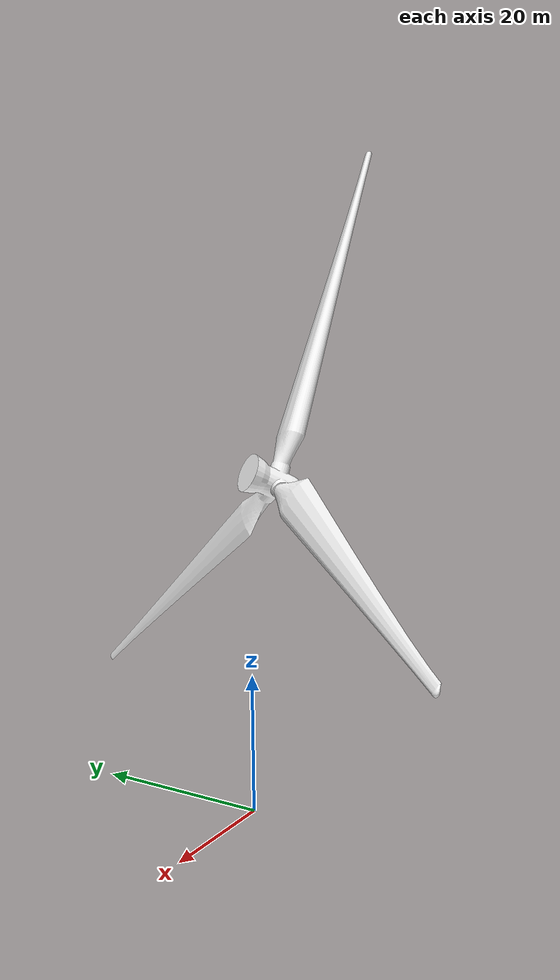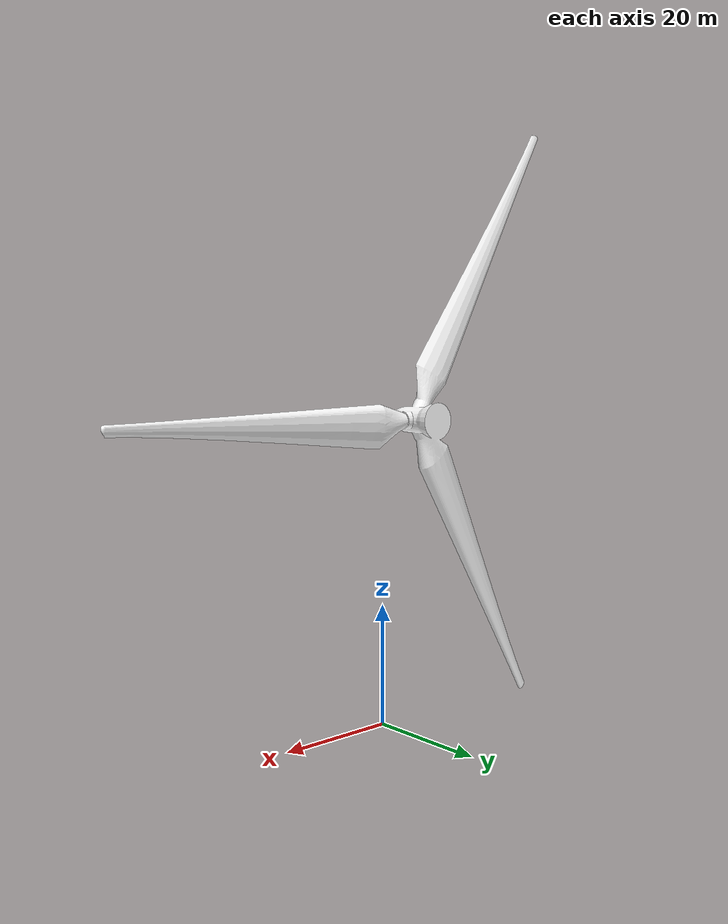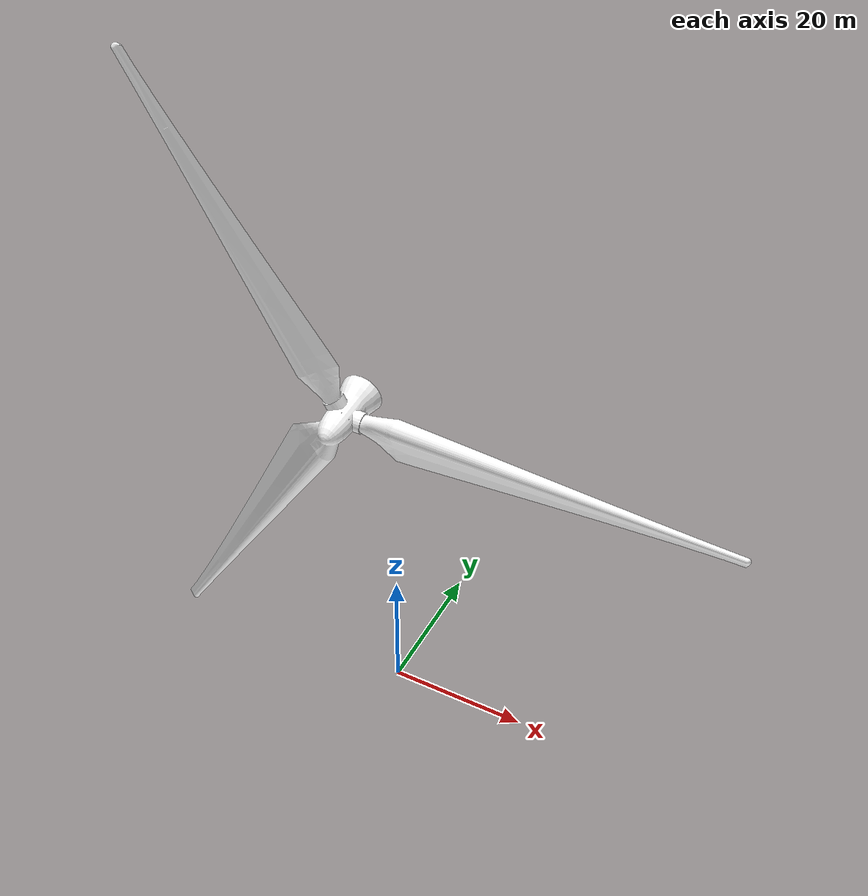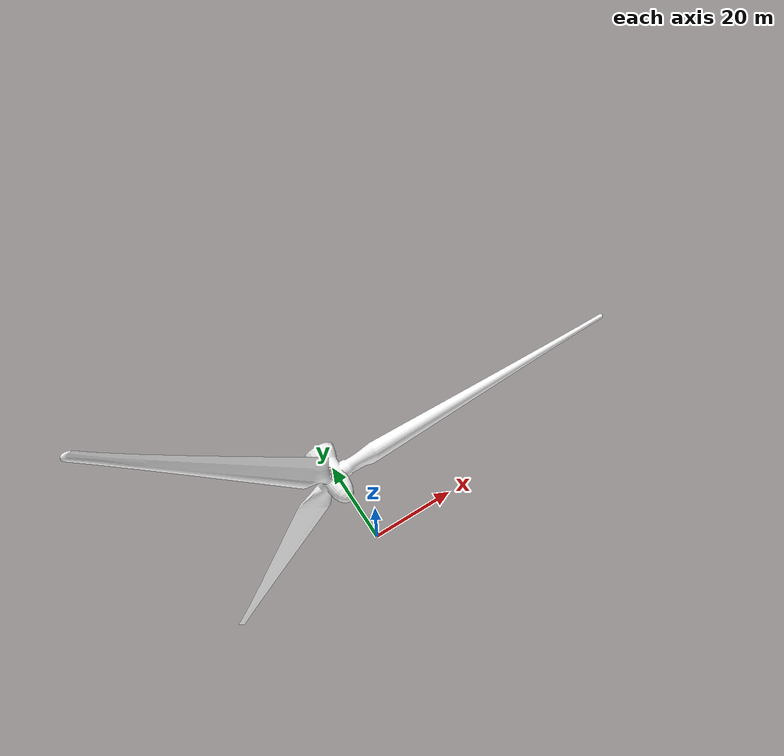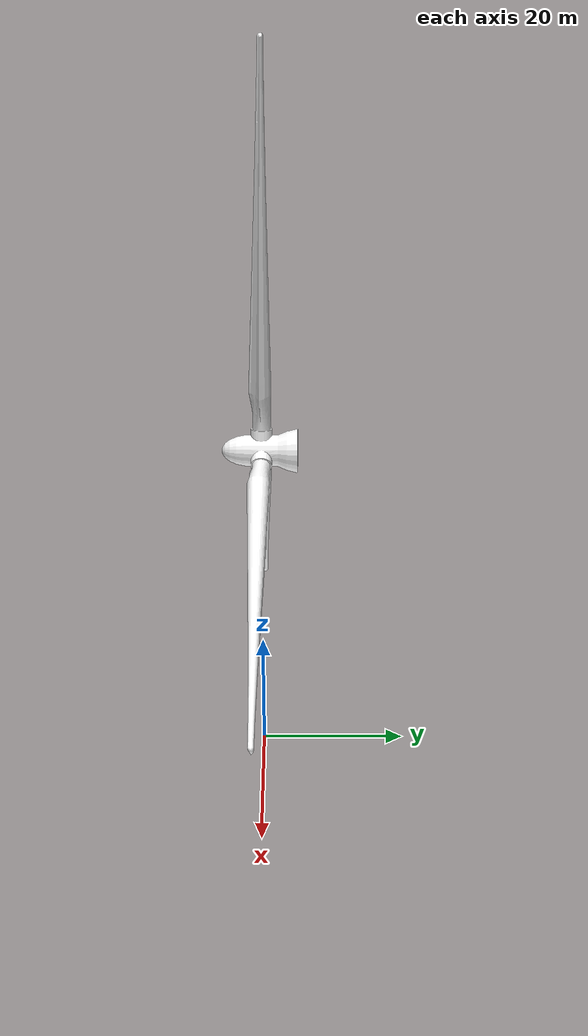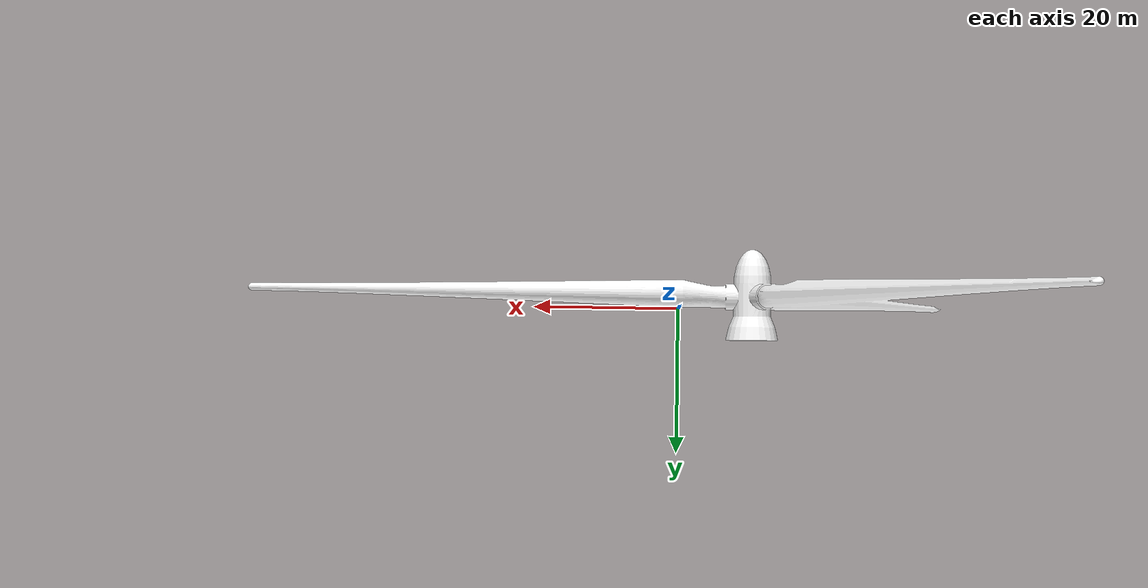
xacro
<?xml version="1.0"?>

<robot name="wind_turbine" xmlns:xacro="http://ros.org/wiki/xacro">
  <xacro:property name="PI" value="3.14" />

  <link name="world"></link>

    <!--LINK1 wind_turbine base-->

    <!--LINK2 wind_turbine rotor-->
    <link name='link_wind_turbine_rotor'>

      <inertial>
        <mass value="10" />
        <origin rpy="0 0 0" xyz="0 0 0"/>
        <inertia
          ixx="0.24721438" ixy="0.00007284" ixz="0.00000045"
          iyx="0.00007284" iyy="0.24718850" iyz="0.00000183"
          izx="0.00000045" izy="0.00000183" izz="0.49126955"/>
      </inertial>

      <visual>
        <origin xyz="0.5 0 0" rpy="${PI/2} 0 0" />
        <geometry>
          <mesh filename="package://bebop_gazebo/meshes/wind_turbine_rotor.dae"
            scale="100 100 100" />
        </geometry>
      </visual>

      <collision name='collision'>
        <origin xyz="0.5 0 0" rpy="${PI/2} 0 0"/>
        <geometry>
          <mesh filename="package://bebop_gazebo/meshes/wind_turbine_rotor.dae"
            scale="100 100 100" />
        </geometry>
      </collision>
    </link>

    <!--JOINT1 FIXED wind_turbine base-->
    <joint name="joint_wind_turbine_base" type="fixed">
        <origin xyz="0 0 50" rpy="0 0 0"/>
        <parent link="world"/>
        <child link="link_wind_turbine_rotor"/>
    </joint>
    <!--JOINT2 FIXED force_sensor_mount_top-->

</robot>
